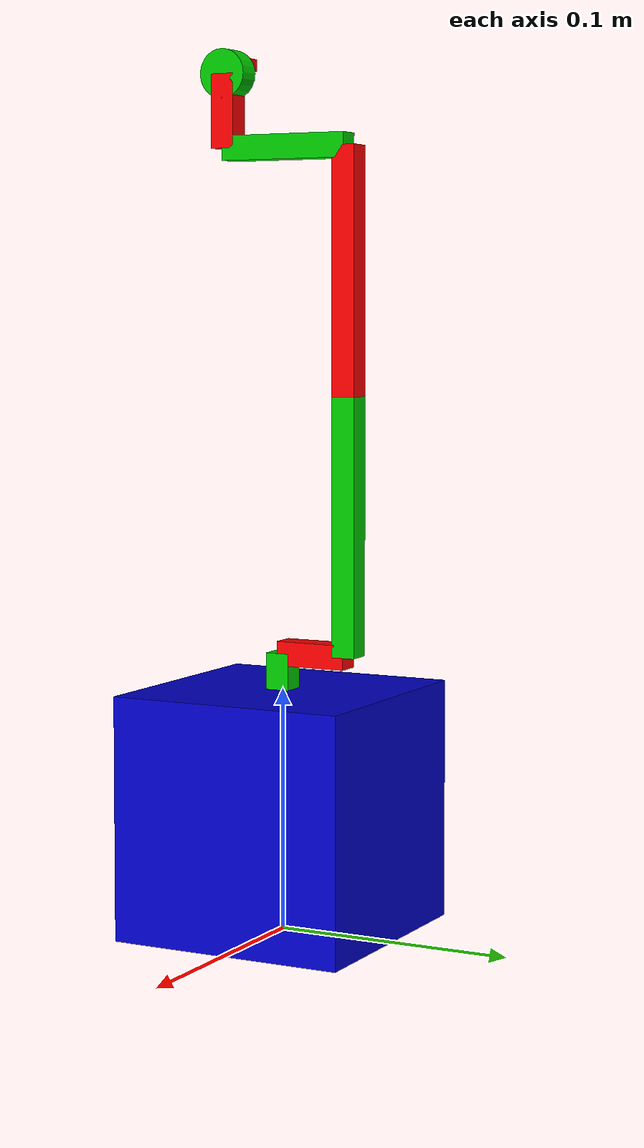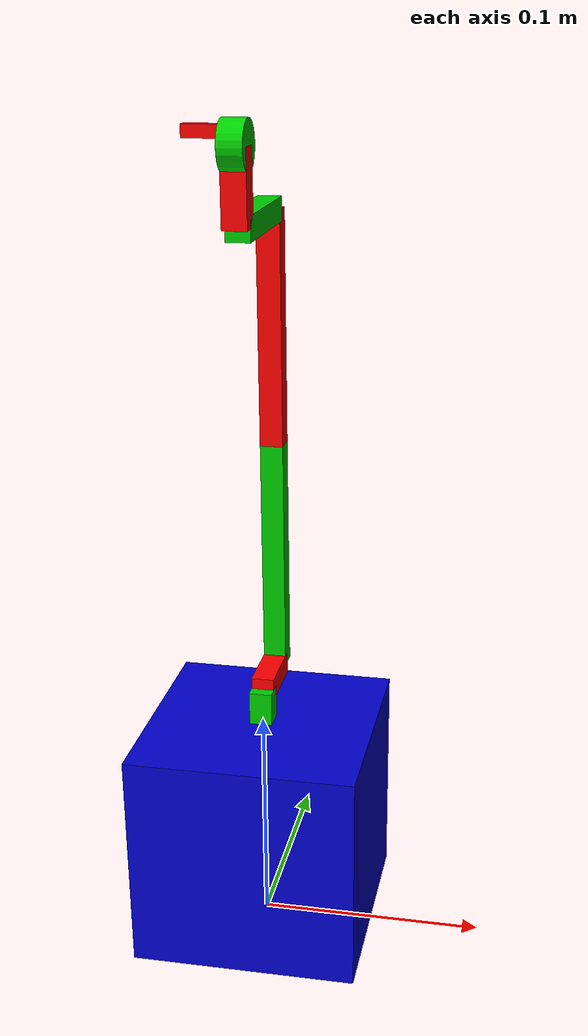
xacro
<?xml version="1.0"?>

<robot name="roboshark" xmlns:xacro="http://ros.org/wiki/xacro">
    <material name="blue">
        <color rgba="0 0 0.8 1"/>
    </material>
    <material name="green">
        <color rgba="0.0 0.8 0.0 1.0"/>
    </material>

    <material name="red">
        <color rgba="1 0 0 1.0"/>
    </material>

    <link name="base_link">
    <visual>
        <origin xyz="0 0 0.05" rpy="0.0 0.0 0.0"/>
        <geometry>
            <box size="0.1 0.1 0.1"/>
        </geometry>
        <material name="blue"/>
    </visual>
    </link>

    <!-- BASE -->
    <joint name="base_link__link_01" type="revolute">
        <origin xyz="0 0 0.1" rpy="0.0 0.0 0.0"/>
        <parent link="base_link"/>
        <child link="link_01"/>
        <axis xyz="0 0 1"/>
        <limit lower="-1.5708" upper="1.5708" effort="1000" velocity="0.5"/>
    </joint>
    <link name="link_01">
        <visual>
            <origin xyz="0 0 0.0075" rpy="0.0 0.0 0.0"/>
            <geometry>
                <box size="0.01 0.01 0.015"/>
            </geometry>
            <material name="green"/>
        </visual>
    </link>

    <joint name="link_01__link_02" type="fixed">
        <origin xyz="0 0 0.015" rpy="0.0 0.0 0.0"/>
        <parent link="link_01"/>
        <child link="link_02"/>
    </joint>

    <link name="link_02">
        <visual>
            <origin xyz="0.0 0.015 0" rpy="0 0.0 0.0"/>
            <geometry>
                <box size="0.01 0.03 0.01 "/>
            </geometry>
            <material name="red"/>
        </visual>
    </link>

     <joint name="link_02__link_03" type="revolute">
        <origin xyz="0.0 0.03 0" rpy="0 0 0"/>
        <parent link="link_02"/>
        <child link="link_03"/>
        <axis xyz="0 1 0"/>
        <limit lower="-1.5708" upper="1.5708" effort="1000" velocity="0.5"/>
    </joint>

    <link name="link_03">
        <visual>
            <origin xyz="0 0 0.0525" rpy="0 0 0"/>
            <geometry>
                <box size="0.01 0.01 0.105"/>
            </geometry>
            <material name="green"/>
        </visual>

    </link>
         <joint name="link_03__link_04" type="revolute">
        <origin xyz="0.0 0 0.105" rpy="0.0 0.0 0.0"/>
        <parent link="link_03"/>
        <child link="link_04"/>
        <axis xyz="0 1 0"/>
        <limit lower="-1.5708" upper="1.5708" effort="1000" velocity="0.5"/>
    </joint>

    <link name="link_04">
        <visual>
            <origin xyz="0 0 0.05 " rpy="0 0.0 0.0"/>
            <geometry>
                <box size="0.01 0.01 0.1"/>
            </geometry>
            <material name="red"/>
        </visual>
    </link>

    <joint name="link_04__link_05" type="revolute">
        <origin xyz="0 0 0.1 " rpy="0 0.0 1.5708"/>
        <parent link="link_04"/>
        <child link="link_05"/>
        <axis xyz="1 0 0"/>
        <limit lower="-1.5708" upper="1.5708" effort="1000" velocity="0.5"/>
    </joint>

    <link name="link_05">
        <visual>
            <origin xyz="-0.0275 0 0" rpy="0 0 0"/>
            <geometry>
                <box size="0.055 0.01 0.01"/>
            </geometry>
            <material name="green"/>
        </visual>
    </link>

    <joint name="link_05__link_06" type="fixed">
        <origin xyz="-0.055 0 0" rpy="0.0 0 0.0"/>
        <parent link="link_05"/>
        <child link="link_06"/>
        <axis xyz="1 0 0"/>
        <limit lower="-1.5708" upper="1.5708" effort="1000" velocity="0.5"/>
    </joint>

    <link name="link_06">
        <visual>
            <origin xyz="0 0 0.015" rpy="0 0 0"/>
            <geometry>
                <box size="0.01 0.01 0.03"/>
            </geometry>
            <material name="red"/>
        </visual>
    </link>

    <joint name="link_06__link_07" type="revolute">
        <origin xyz="0 0 0.03" rpy="0.0 0.0 0.0"/>
        <parent link="link_06"/>
        <child link="link_07"/>
        <axis xyz="0 1 0"/>
        <limit lower="-1.5708" upper="1.5708" effort="1000" velocity="0.5"/>
    </joint>
    <link name="link_07">
        <visual>
          <origin xyz="0 0 0" rpy="1.5708 0 0"/>
          <geometry>
            <cylinder length="0.01" radius="0.01"/>
          </geometry>
          <material name="green"/>
        </visual>
    </link>

    <joint name="link_07__link_08" type="fixed">
        <origin xyz="0 0 0.005" rpy="0.0 0.0 0.0"/>
        <parent link="link_07"/>
        <child link="link_08"/>
    </joint>
    <link name="link_08">
        <visual>
            <origin xyz="0 0.01 0" rpy="0 0 0"/>
            <geometry>
                <box size="0.005 0.02 0.005"/>
            </geometry>
            <material name="red"/>
        </visual>
    </link>

</robot>
